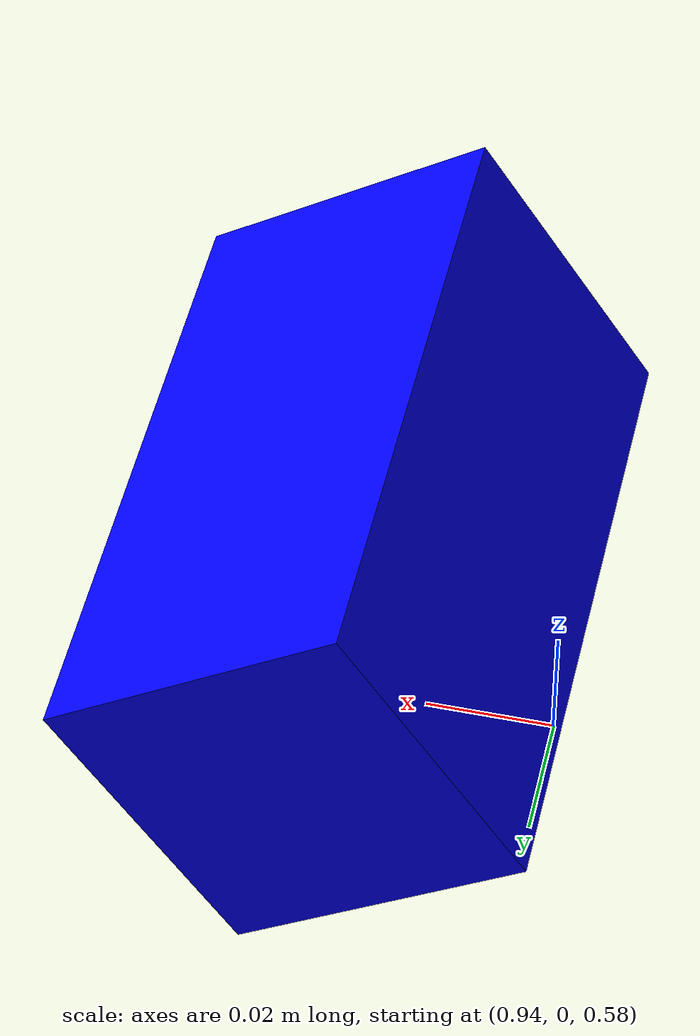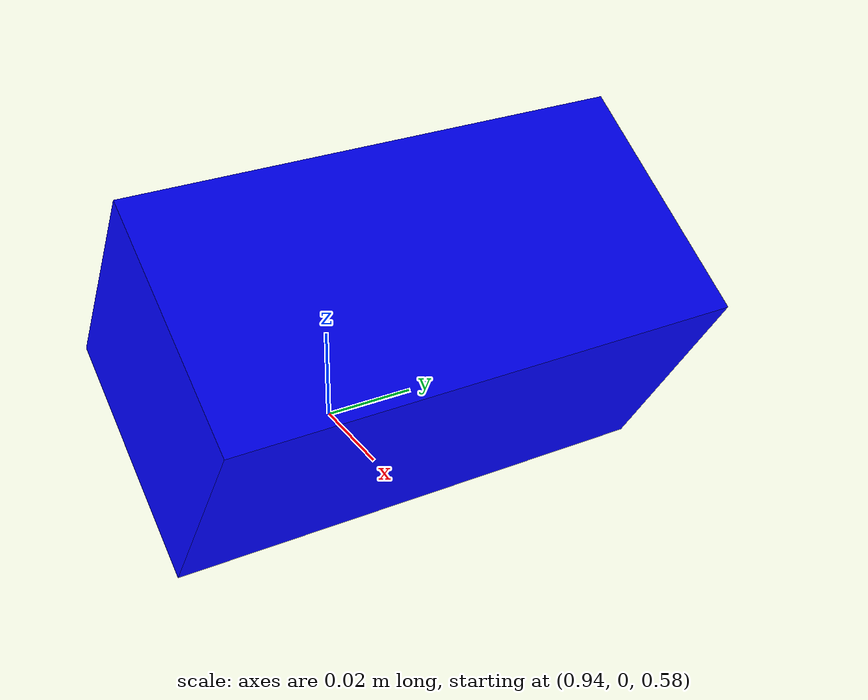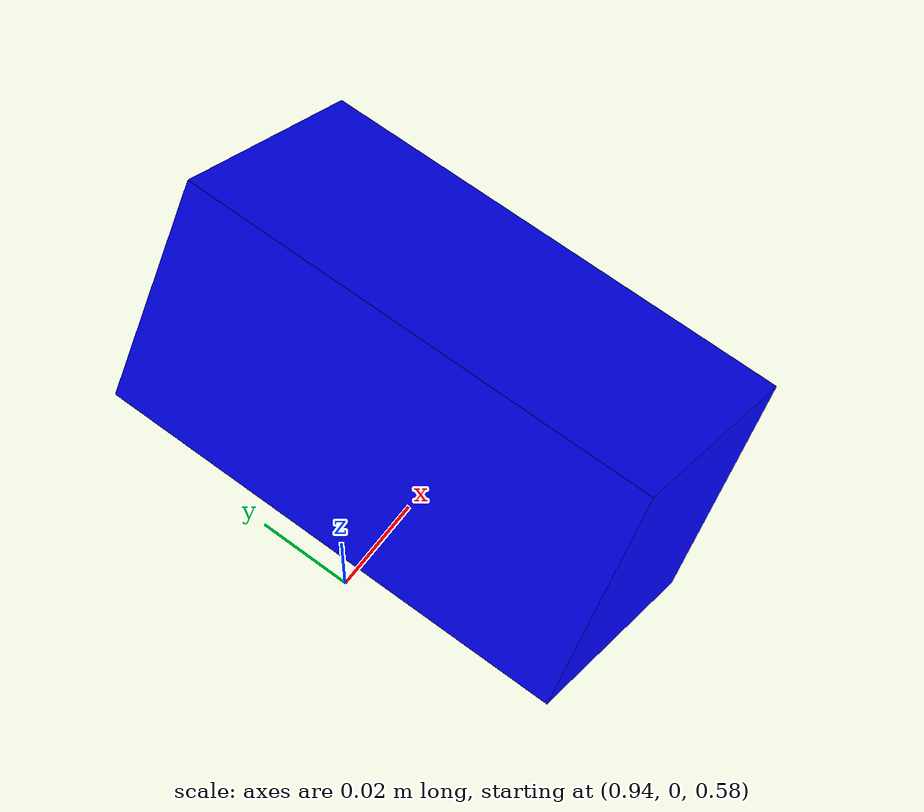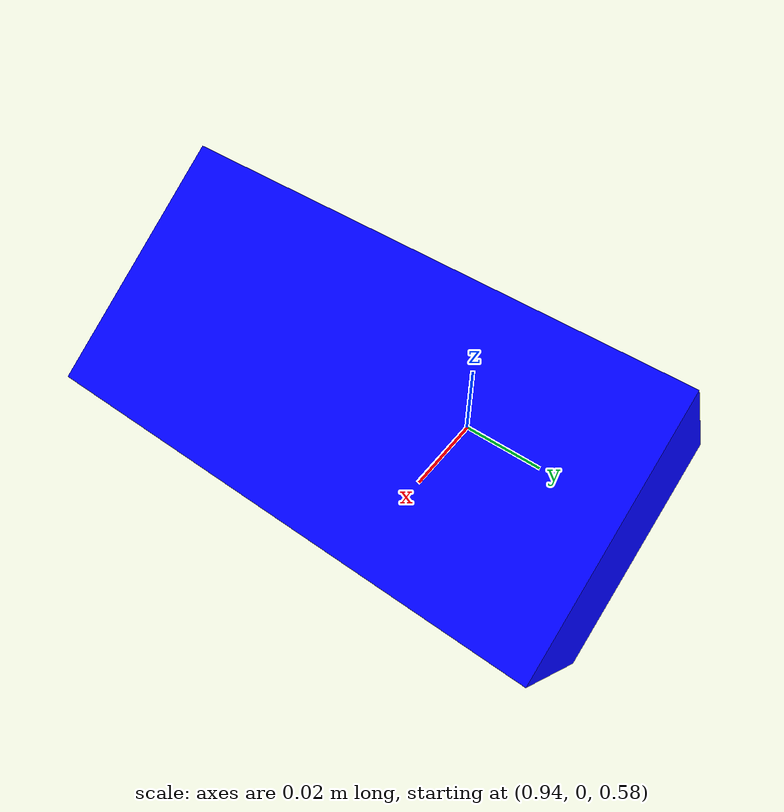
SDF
<?xml version="1.0" ?>
<sdf version="1.6">
  <world name="default">
    <physics type="ode">
      <max_step_size>0.001</max_step_size>
      <real_time_update_rate>1000</real_time_update_rate>
      <ode>
        <solver>
          <type>quick</type>
          <iters>200</iters>
          <sor>1.3</sor>
        </solver>
        <constraints>
          <cfm>0.0</cfm>
          <erp>0.2</erp>
          <contact_max_correcting_vel>0.1</contact_max_correcting_vel>
          <contact_surface_layer>0.001</contact_surface_layer>
        </constraints>
      </ode>
    </physics>
    <include><uri>model://ground_plane</uri></include>
    <include><uri>model://sun</uri></include>

    <!-- CAMERA RGB-D: Plugin per pubblicare PointCloud2 -->
    <model name="camera">
      <static>true</static>
      <!-- r~0.65m from workspace [0.65,0,0.05], elevation ~30deg from vertical (in ICGNet training range) -->
      <pose>0.97 0 0.616 0 1.0 3.14159</pose>
      <link name="link">
        <visual name="visual">
          <!-- Un piccolo cubo blu per capire dove si trova fisicamente la telecamera -->
          <geometry><box><size>0.05 0.1 0.05</size></box></geometry>
          <material><ambient>0 0 1 1</ambient></material>
        </visual>
        <sensor name="camera" type="depth">
          <update_rate>30</update_rate>
          <camera>
            <horizontal_fov>1.047198</horizontal_fov>
            <image><width>640</width><height>480</height><format>R8G8B8</format></image>
            <clip><near>0.05</near><far>3</far></clip>
          </camera>
          <plugin name="camera_controller" filename="libgazebo_ros_camera.so">
            <ros>
              <namespace>/camera</namespace>
            </ros>
            <camera_name>rgbd_camera</camera_name>
            <frame_name>camera_link_optical</frame_name>
            <min_depth>0.1</min_depth>
            <max_depth>10.0</max_depth>
          </plugin>
        </sensor>
      </link>
    </model>

    <!-- Exposes /set_entity_state and /get_entity_state services for object teleportation -->
    <plugin name="gazebo_ros_state" filename="libgazebo_ros_state.so">
      <update_rate>1.0</update_rate>
    </plugin>

    <plugin name="gazebo_model_attachment" filename="libgazebo_model_attachment_plugin_lib.so"/>
  </world>
</sdf>
